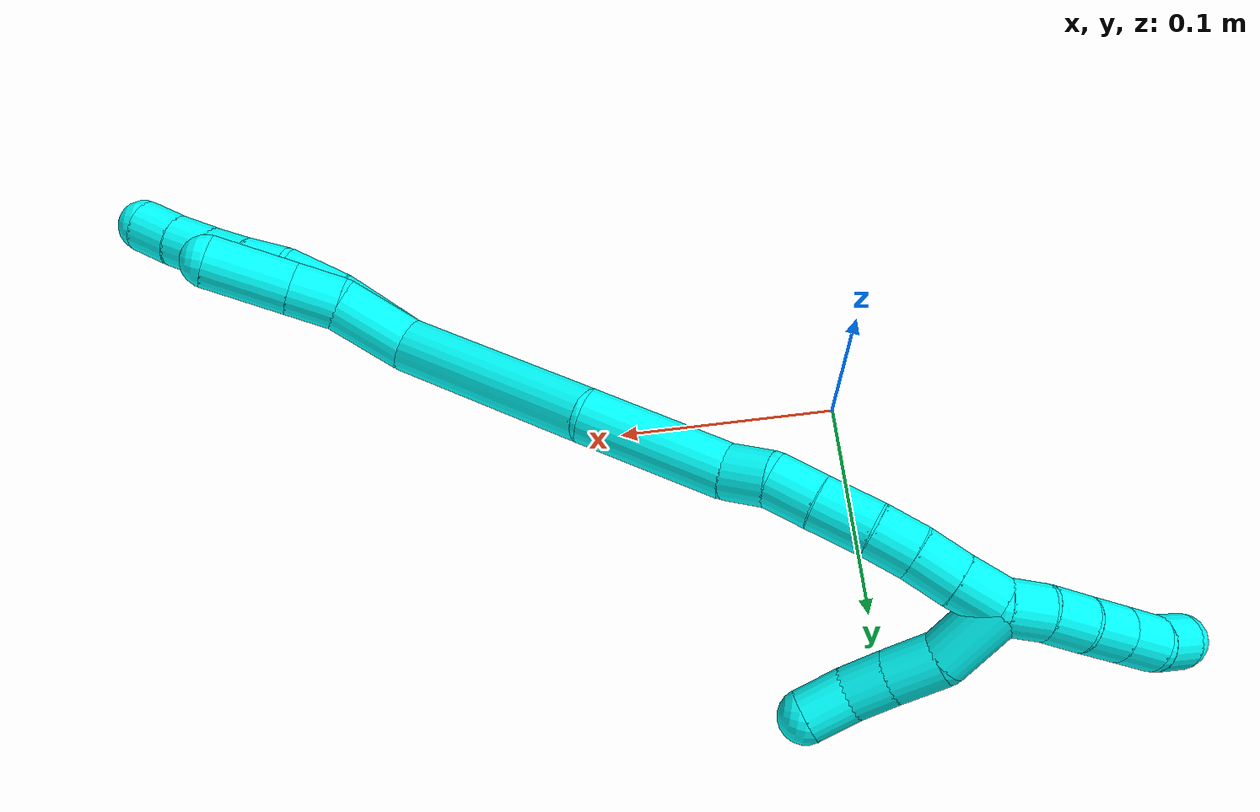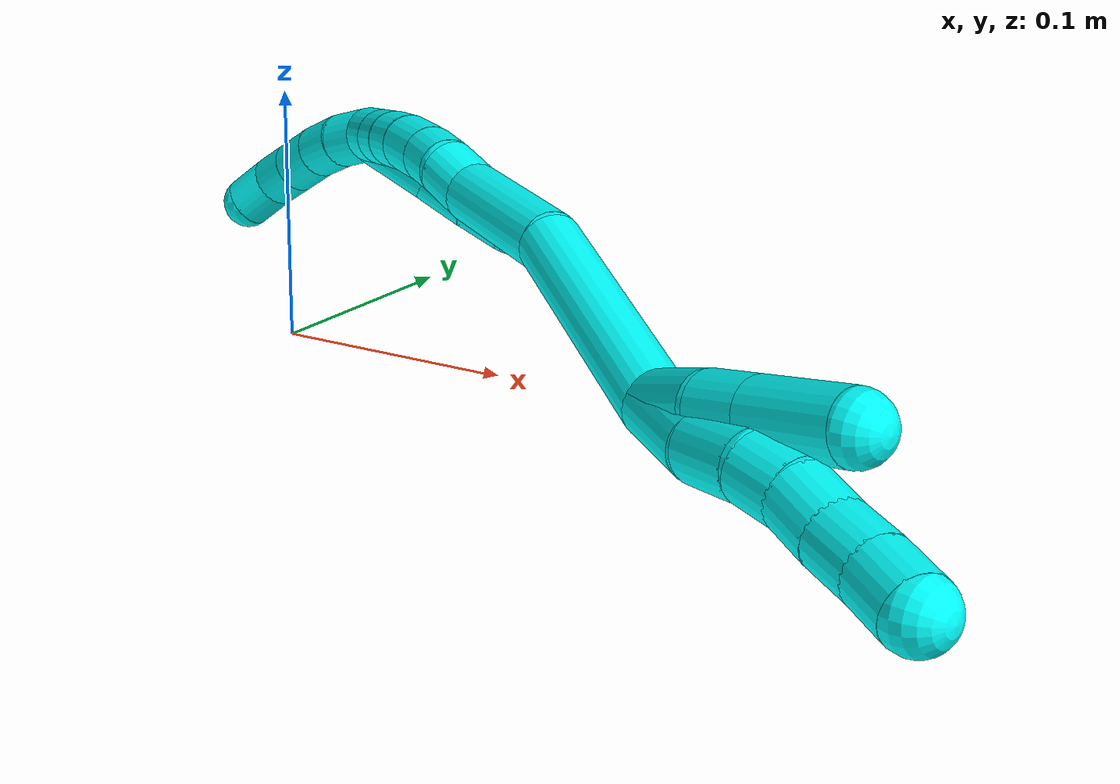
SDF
<sdf version="1.7">
 <world name="default">
  <model name="3">
   <static>0</static>
   <link name="3">
    <collision name="collision-cylinder-e_1_2_8">
     <pose>0.008987 0.000628 -0.01861 -3.10787 0.449661 -2.99438</pose>
     <geometry><cylinder><radius>0.0125</radius><length>0.041352</length></cylinder></geometry>
     <surface>
      <friction><ode><mu>1.16</mu><mu2>1.16</mu2><slip1>0</slip1><slip2>0</slip2></ode></friction>
      <contact><ode><kp>1e+06</kp><kd>1</kd><max_vel>0</max_vel><min_depth>0.001</min_depth></ode></contact>
     </surface>
    </collision>
    <visual name="visual-cylinder-e_1_2_8">
     <pose>0.008987 0.000628 -0.01861 -3.10787 0.449661 -2.99438</pose>
     <geometry><cylinder><radius>0.0125</radius><length>0.041352</length></cylinder></geometry>
     <material><ambient>0.003922 1 0.996078 1</ambient></material>
    </visual>
    <collision name="collision-cylinder-e_2_8_9">
     <pose>0.021433 0.002851 -0.050933 -3.02581 0.245511 -2.26327</pose>
     <geometry><cylinder><radius>0.0125</radius><length>0.028464</length></cylinder></geometry>
     <surface>
      <friction><ode><mu>1.16</mu><mu2>1.16</mu2><slip1>0</slip1><slip2>0</slip2></ode></friction>
      <contact><ode><kp>1e+06</kp><kd>1</kd><max_vel>0</max_vel><min_depth>0.001</min_depth></ode></contact>
     </surface>
    </collision>
    <visual name="visual-cylinder-e_2_8_9">
     <pose>0.021433 0.002851 -0.050933 -3.02581 0.245511 -2.26327</pose>
     <geometry><cylinder><radius>0.0125</radius><length>0.028464</length></cylinder></geometry>
     <material><ambient>0.003922 1 0.996078 1</ambient></material>
    </visual>
    <collision name="collision-cylinder-e_3_9_10">
     <pose>0.026646 0.003159 -0.074423 3.01077 0.176004 1.86428</pose>
     <geometry><cylinder><radius>0.0125</radius><length>0.020034</length></cylinder></geometry>
     <surface>
      <friction><ode><mu>1.16</mu><mu2>1.16</mu2><slip1>0</slip1><slip2>0</slip2></ode></friction>
      <contact><ode><kp>1e+06</kp><kd>1</kd><max_vel>0</max_vel><min_depth>0.001</min_depth></ode></contact>
     </surface>
    </collision>
    <visual name="visual-cylinder-e_3_9_10">
     <pose>0.026646 0.003159 -0.074423 3.01077 0.176004 1.86428</pose>
     <geometry><cylinder><radius>0.0125</radius><length>0.020034</length></cylinder></geometry>
     <material><ambient>0.003922 1 0.996078 1</ambient></material>
    </visual>
    <collision name="collision-cylinder-e_4_10_11">
     <pose>0.031501 -0.000673 -0.093428 2.87242 0.313339 1.72427</pose>
     <geometry><cylinder><radius>0.0125</radius><length>0.020123</length></cylinder></geometry>
     <surface>
      <friction><ode><mu>1.16</mu><mu2>1.16</mu2><slip1>0</slip1><slip2>0</slip2></ode></friction>
      <contact><ode><kp>1e+06</kp><kd>1</kd><max_vel>0</max_vel><min_depth>0.001</min_depth></ode></contact>
     </surface>
    </collision>
    <visual name="visual-cylinder-e_4_10_11">
     <pose>0.031501 -0.000673 -0.093428 2.87242 0.313339 1.72427</pose>
     <geometry><cylinder><radius>0.0125</radius><length>0.020123</length></cylinder></geometry>
     <material><ambient>0.003922 1 0.996078 1</ambient></material>
    </visual>
    <collision name="collision-cylinder-e_5_11_12">
     <pose>0.037566 -0.004808 -0.112075 2.97445 0.300755 2.13156</pose>
     <geometry><cylinder><radius>0.0125</radius><length>0.020004</length></cylinder></geometry>
     <surface>
      <friction><ode><mu>1.16</mu><mu2>1.16</mu2><slip1>0</slip1><slip2>0</slip2></ode></friction>
      <contact><ode><kp>1e+06</kp><kd>1</kd><max_vel>0</max_vel><min_depth>0.001</min_depth></ode></contact>
     </surface>
    </collision>
    <visual name="visual-cylinder-e_5_11_12">
     <pose>0.037566 -0.004808 -0.112075 2.97445 0.300755 2.13156</pose>
     <geometry><cylinder><radius>0.0125</radius><length>0.020004</length></cylinder></geometry>
     <material><ambient>0.003922 1 0.996078 1</ambient></material>
    </visual>
    <collision name="collision-cylinder-e_6_12_6">
     <pose>0.044262 -0.007889 -0.130664 2.98026 0.382079 2.34974</pose>
     <geometry><cylinder><radius>0.0125</radius><length>0.020024</length></cylinder></geometry>
     <surface>
      <friction><ode><mu>1.16</mu><mu2>1.16</mu2><slip1>0</slip1><slip2>0</slip2></ode></friction>
      <contact><ode><kp>1e+06</kp><kd>1</kd><max_vel>0</max_vel><min_depth>0.001</min_depth></ode></contact>
     </surface>
    </collision>
    <visual name="visual-cylinder-e_6_12_6">
     <pose>0.044262 -0.007889 -0.130664 2.98026 0.382079 2.34974</pose>
     <geometry><cylinder><radius>0.0125</radius><length>0.020024</length></cylinder></geometry>
     <material><ambient>0.003922 1 0.996078 1</ambient></material>
    </visual>
    <collision name="collision-cylinder-e_1_2_13">
     <pose>0.004449 0.005352 -0.016912 -2.83513 0.245722 -1.34891</pose>
     <geometry><cylinder><radius>0.0125</radius><length>0.036576</length></cylinder></geometry>
     <surface>
      <friction><ode><mu>1.16</mu><mu2>1.16</mu2><slip1>0</slip1><slip2>0</slip2></ode></friction>
      <contact><ode><kp>1e+06</kp><kd>1</kd><max_vel>0</max_vel><min_depth>0.001</min_depth></ode></contact>
     </surface>
    </collision>
    <visual name="visual-cylinder-e_1_2_13">
     <pose>0.004449 0.005352 -0.016912 -2.83513 0.245722 -1.34891</pose>
     <geometry><cylinder><radius>0.0125</radius><length>0.036576</length></cylinder></geometry>
     <material><ambient>0.003922 1 0.996078 1</ambient></material>
    </visual>
    <collision name="collision-cylinder-e_2_13_14">
     <pose>0.009724 0.012372 -0.04514 -2.99513 0.072169 -0.914607</pose>
     <geometry><cylinder><radius>0.0125</radius><length>0.022935</length></cylinder></geometry>
     <surface>
      <friction><ode><mu>1.16</mu><mu2>1.16</mu2><slip1>0</slip1><slip2>0</slip2></ode></friction>
      <contact><ode><kp>1e+06</kp><kd>1</kd><max_vel>0</max_vel><min_depth>0.001</min_depth></ode></contact>
     </surface>
    </collision>
    <visual name="visual-cylinder-e_2_13_14">
     <pose>0.009724 0.012372 -0.04514 -2.99513 0.072169 -0.914607</pose>
     <geometry><cylinder><radius>0.0125</radius><length>0.022935</length></cylinder></geometry>
     <material><ambient>0.003922 1 0.996078 1</ambient></material>
    </visual>
    <collision name="collision-cylinder-e_3_14_5">
     <pose>0.012024 0.017005 -0.076427 -2.9943 0.072816 -0.917191</pose>
     <geometry><cylinder><radius>0.0125</radius><length>0.040489</length></cylinder></geometry>
     <surface>
      <friction><ode><mu>1.16</mu><mu2>1.16</mu2><slip1>0</slip1><slip2>0</slip2></ode></friction>
      <contact><ode><kp>1e+06</kp><kd>1</kd><max_vel>0</max_vel><min_depth>0.001</min_depth></ode></contact>
     </surface>
    </collision>
    <visual name="visual-cylinder-e_3_14_5">
     <pose>0.012024 0.017005 -0.076427 -2.9943 0.072816 -0.917191</pose>
     <geometry><cylinder><radius>0.0125</radius><length>0.040489</length></cylinder></geometry>
     <material><ambient>0.003922 1 0.996078 1</ambient></material>
    </visual>
    <collision name="collision-cylinder-e_1_2_15">
     <pose>-0.020252 0.015185 0.044216 -0.330798 -0.408794 0.069176</pose>
     <geometry><cylinder><radius>0.0125</radius><length>0.101898</length></cylinder></geometry>
     <surface>
      <friction><ode><mu>1.16</mu><mu2>1.16</mu2><slip1>0</slip1><slip2>0</slip2></ode></friction>
      <contact><ode><kp>1e+06</kp><kd>1</kd><max_vel>0</max_vel><min_depth>0.001</min_depth></ode></contact>
     </surface>
    </collision>
    <visual name="visual-cylinder-e_1_2_15">
     <pose>-0.020252 0.015185 0.044216 -0.330798 -0.408794 0.069176</pose>
     <geometry><cylinder><radius>0.0125</radius><length>0.101898</length></cylinder></geometry>
     <material><ambient>0.003922 1 0.996078 1</ambient></material>
    </visual>
    <collision name="collision-cylinder-e_2_15_16">
     <pose>-0.050095 0.033116 0.120607 -0.085152 -0.288684 0.012384</pose>
     <geometry><cylinder><radius>0.0125</radius><length>0.067371</length></cylinder></geometry>
     <surface>
      <friction><ode><mu>1.16</mu><mu2>1.16</mu2><slip1>0</slip1><slip2>0</slip2></ode></friction>
      <contact><ode><kp>1e+06</kp><kd>1</kd><max_vel>0</max_vel><min_depth>0.001</min_depth></ode></contact>
     </surface>
    </collision>
    <visual name="visual-cylinder-e_2_15_16">
     <pose>-0.050095 0.033116 0.120607 -0.085152 -0.288684 0.012384</pose>
     <geometry><cylinder><radius>0.0125</radius><length>0.067371</length></cylinder></geometry>
     <material><ambient>0.003922 1 0.996078 1</ambient></material>
    </visual>
    <collision name="collision-cylinder-e_3_16_17">
     <pose>-0.061729 0.039199 0.162386 -0.33437 -0.198416 0.033592</pose>
     <geometry><cylinder><radius>0.0125</radius><length>0.020741</length></cylinder></geometry>
     <surface>
      <friction><ode><mu>1.16</mu><mu2>1.16</mu2><slip1>0</slip1><slip2>0</slip2></ode></friction>
      <contact><ode><kp>1e+06</kp><kd>1</kd><max_vel>0</max_vel><min_depth>0.001</min_depth></ode></contact>
     </surface>
    </collision>
    <visual name="visual-cylinder-e_3_16_17">
     <pose>-0.061729 0.039199 0.162386 -0.33437 -0.198416 0.033592</pose>
     <geometry><cylinder><radius>0.0125</radius><length>0.020741</length></cylinder></geometry>
     <material><ambient>0.003922 1 0.996078 1</ambient></material>
    </visual>
    <collision name="collision-cylinder-e_4_17_18">
     <pose>-0.067722 0.043038 0.182025 -0.050032 -0.374403 0.009479</pose>
     <geometry><cylinder><radius>0.0125</radius><length>0.021592</length></cylinder></geometry>
     <surface>
      <friction><ode><mu>1.16</mu><mu2>1.16</mu2><slip1>0</slip1><slip2>0</slip2></ode></friction>
      <contact><ode><kp>1e+06</kp><kd>1</kd><max_vel>0</max_vel><min_depth>0.001</min_depth></ode></contact>
     </surface>
    </collision>
    <visual name="visual-cylinder-e_4_17_18">
     <pose>-0.067722 0.043038 0.182025 -0.050032 -0.374403 0.009479</pose>
     <geometry><cylinder><radius>0.0125</radius><length>0.021592</length></cylinder></geometry>
     <material><ambient>0.003922 1 0.996078 1</ambient></material>
    </visual>
    <collision name="collision-cylinder-e_5_18_19">
     <pose>-0.075954 0.043574 0.20449 -0.00274 -0.331915 0.000459</pose>
     <geometry><cylinder><radius>0.0125</radius><length>0.026293</length></cylinder></geometry>
     <surface>
      <friction><ode><mu>1.16</mu><mu2>1.16</mu2><slip1>0</slip1><slip2>0</slip2></ode></friction>
      <contact><ode><kp>1e+06</kp><kd>1</kd><max_vel>0</max_vel><min_depth>0.001</min_depth></ode></contact>
     </surface>
    </collision>
    <visual name="visual-cylinder-e_5_18_19">
     <pose>-0.075954 0.043574 0.20449 -0.00274 -0.331915 0.000459</pose>
     <geometry><cylinder><radius>0.0125</radius><length>0.026293</length></cylinder></geometry>
     <material><ambient>0.003922 1 0.996078 1</ambient></material>
    </visual>
    <collision name="collision-cylinder-e_6_19_20">
     <pose>-0.083488 0.042625 0.226363 0.10371 -0.329807 -0.017274</pose>
     <geometry><cylinder><radius>0.0125</radius><length>0.020072</length></cylinder></geometry>
     <surface>
      <friction><ode><mu>1.16</mu><mu2>1.16</mu2><slip1>0</slip1><slip2>0</slip2></ode></friction>
      <contact><ode><kp>1e+06</kp><kd>1</kd><max_vel>0</max_vel><min_depth>0.001</min_depth></ode></contact>
     </surface>
    </collision>
    <visual name="visual-cylinder-e_6_19_20">
     <pose>-0.083488 0.042625 0.226363 0.10371 -0.329807 -0.017274</pose>
     <geometry><cylinder><radius>0.0125</radius><length>0.020072</length></cylinder></geometry>
     <material><ambient>0.003922 1 0.996078 1</ambient></material>
    </visual>
    <collision name="collision-cylinder-e_7_20_21">
     <pose>-0.090622 0.039971 0.245401 0.172506 -0.37949 -0.03321</pose>
     <geometry><cylinder><radius>0.0125</radius><length>0.020969</length></cylinder></geometry>
     <surface>
      <friction><ode><mu>1.16</mu><mu2>1.16</mu2><slip1>0</slip1><slip2>0</slip2></ode></friction>
      <contact><ode><kp>1e+06</kp><kd>1</kd><max_vel>0</max_vel><min_depth>0.001</min_depth></ode></contact>
     </surface>
    </collision>
    <visual name="visual-cylinder-e_7_20_21">
     <pose>-0.090622 0.039971 0.245401 0.172506 -0.37949 -0.03321</pose>
     <geometry><cylinder><radius>0.0125</radius><length>0.020969</length></cylinder></geometry>
     <material><ambient>0.003922 1 0.996078 1</ambient></material>
    </visual>
    <collision name="collision-cylinder-e_8_21_1">
     <pose>-0.097984 0.036813 0.264824 0.150039 -0.336564 -0.025537</pose>
     <geometry><cylinder><radius>0.0125</radius><length>0.021064</length></cylinder></geometry>
     <surface>
      <friction><ode><mu>1.16</mu><mu2>1.16</mu2><slip1>0</slip1><slip2>0</slip2></ode></friction>
      <contact><ode><kp>1e+06</kp><kd>1</kd><max_vel>0</max_vel><min_depth>0.001</min_depth></ode></contact>
     </surface>
    </collision>
    <visual name="visual-cylinder-e_8_21_1">
     <pose>-0.097984 0.036813 0.264824 0.150039 -0.336564 -0.025537</pose>
     <geometry><cylinder><radius>0.0125</radius><length>0.021064</length></cylinder></geometry>
     <material><ambient>0.003922 1 0.996078 1</ambient></material>
    </visual>
    <collision name="collision-cylinder-e_1_1_22">
     <pose>-0.10021 0.033268 0.284359 0.20906 0.125492 0.013183</pose>
     <geometry><cylinder><radius>0.0125</radius><length>0.02</length></cylinder></geometry>
     <surface>
      <friction><ode><mu>1.16</mu><mu2>1.16</mu2><slip1>0</slip1><slip2>0</slip2></ode></friction>
      <contact><ode><kp>1e+06</kp><kd>1</kd><max_vel>0</max_vel><min_depth>0.001</min_depth></ode></contact>
     </surface>
    </collision>
    <visual name="visual-cylinder-e_1_1_22">
     <pose>-0.10021 0.033268 0.284359 0.20906 0.125492 0.013183</pose>
     <geometry><cylinder><radius>0.0125</radius><length>0.02</length></cylinder></geometry>
     <material><ambient>0.003922 1 0.996078 1</ambient></material>
    </visual>
    <collision name="collision-cylinder-e_2_22_23">
     <pose>-0.098256 0.027819 0.303446 0.346695 0.070313 0.012317</pose>
     <geometry><cylinder><radius>0.0125</radius><length>0.02</length></cylinder></geometry>
     <surface>
      <friction><ode><mu>1.16</mu><mu2>1.16</mu2><slip1>0</slip1><slip2>0</slip2></ode></friction>
      <contact><ode><kp>1e+06</kp><kd>1</kd><max_vel>0</max_vel><min_depth>0.001</min_depth></ode></contact>
     </surface>
    </collision>
    <visual name="visual-cylinder-e_2_22_23">
     <pose>-0.098256 0.027819 0.303446 0.346695 0.070313 0.012317</pose>
     <geometry><cylinder><radius>0.0125</radius><length>0.02</length></cylinder></geometry>
     <material><ambient>0.003922 1 0.996078 1</ambient></material>
    </visual>
    <collision name="collision-cylinder-e_3_23_24">
     <pose>-0.09607 0.02004 0.321689 0.45991 0.148906 0.034919</pose>
     <geometry><cylinder><radius>0.0125</radius><length>0.02</length></cylinder></geometry>
     <surface>
      <friction><ode><mu>1.16</mu><mu2>1.16</mu2><slip1>0</slip1><slip2>0</slip2></ode></friction>
      <contact><ode><kp>1e+06</kp><kd>1</kd><max_vel>0</max_vel><min_depth>0.001</min_depth></ode></contact>
     </surface>
    </collision>
    <visual name="visual-cylinder-e_3_23_24">
     <pose>-0.09607 0.02004 0.321689 0.45991 0.148906 0.034919</pose>
     <geometry><cylinder><radius>0.0125</radius><length>0.02</length></cylinder></geometry>
     <material><ambient>0.003922 1 0.996078 1</ambient></material>
    </visual>
    <collision name="collision-cylinder-e_4_24_25">
     <pose>-0.093196 0.011296 0.339445 0.455373 0.139465 0.032364</pose>
     <geometry><cylinder><radius>0.0125</radius><length>0.02</length></cylinder></geometry>
     <surface>
      <friction><ode><mu>1.16</mu><mu2>1.16</mu2><slip1>0</slip1><slip2>0</slip2></ode></friction>
      <contact><ode><kp>1e+06</kp><kd>1</kd><max_vel>0</max_vel><min_depth>0.001</min_depth></ode></contact>
     </surface>
    </collision>
    <visual name="visual-cylinder-e_4_24_25">
     <pose>-0.093196 0.011296 0.339445 0.455373 0.139465 0.032364</pose>
     <geometry><cylinder><radius>0.0125</radius><length>0.02</length></cylinder></geometry>
     <material><ambient>0.003922 1 0.996078 1</ambient></material>
    </visual>
    <collision name="collision-cylinder-e_5_25_4">
     <pose>-0.087477 0.001884 0.355802 0.595443 0.447722 0.139495</pose>
     <geometry><cylinder><radius>0.0125</radius><length>0.02</length></cylinder></geometry>
     <surface>
      <friction><ode><mu>1.16</mu><mu2>1.16</mu2><slip1>0</slip1><slip2>0</slip2></ode></friction>
      <contact><ode><kp>1e+06</kp><kd>1</kd><max_vel>0</max_vel><min_depth>0.001</min_depth></ode></contact>
     </surface>
    </collision>
    <visual name="visual-cylinder-e_5_25_4">
     <pose>-0.087477 0.001884 0.355802 0.595443 0.447722 0.139495</pose>
     <geometry><cylinder><radius>0.0125</radius><length>0.02</length></cylinder></geometry>
     <material><ambient>0.003922 1 0.996078 1</ambient></material>
    </visual>
    <collision name="collision-cylinder-e_1_1_26">
     <pose>-0.109858 0.023653 0.265432 2.23936 -0.513802 -0.993815</pose>
     <geometry><cylinder><radius>0.0125</radius><length>0.034164</length></cylinder></geometry>
     <surface>
      <friction><ode><mu>1.16</mu><mu2>1.16</mu2><slip1>0</slip1><slip2>0</slip2></ode></friction>
      <contact><ode><kp>1e+06</kp><kd>1</kd><max_vel>0</max_vel><min_depth>0.001</min_depth></ode></contact>
     </surface>
    </collision>
    <visual name="visual-cylinder-e_1_1_26">
     <pose>-0.109858 0.023653 0.265432 2.23936 -0.513802 -0.993815</pose>
     <geometry><cylinder><radius>0.0125</radius><length>0.034164</length></cylinder></geometry>
     <material><ambient>0.003922 1 0.996078 1</ambient></material>
    </visual>
    <collision name="collision-cylinder-e_2_26_27">
     <pose>-0.121434 0.00515 0.246915 2.50791 -0.26905 -0.782938</pose>
     <geometry><cylinder><radius>0.0125</radius><length>0.023932</length></cylinder></geometry>
     <surface>
      <friction><ode><mu>1.16</mu><mu2>1.16</mu2><slip1>0</slip1><slip2>0</slip2></ode></friction>
      <contact><ode><kp>1e+06</kp><kd>1</kd><max_vel>0</max_vel><min_depth>0.001</min_depth></ode></contact>
     </surface>
    </collision>
    <visual name="visual-cylinder-e_2_26_27">
     <pose>-0.121434 0.00515 0.246915 2.50791 -0.26905 -0.782938</pose>
     <geometry><cylinder><radius>0.0125</radius><length>0.023932</length></cylinder></geometry>
     <material><ambient>0.003922 1 0.996078 1</ambient></material>
    </visual>
    <collision name="collision-cylinder-e_3_27_28">
     <pose>-0.127698 -0.007309 0.229719 2.52261 -0.307776 -0.903289</pose>
     <geometry><cylinder><radius>0.0125</radius><length>0.020357</length></cylinder></geometry>
     <surface>
      <friction><ode><mu>1.16</mu><mu2>1.16</mu2><slip1>0</slip1><slip2>0</slip2></ode></friction>
      <contact><ode><kp>1e+06</kp><kd>1</kd><max_vel>0</max_vel><min_depth>0.001</min_depth></ode></contact>
     </surface>
    </collision>
    <visual name="visual-cylinder-e_3_27_28">
     <pose>-0.127698 -0.007309 0.229719 2.52261 -0.307776 -0.903289</pose>
     <geometry><cylinder><radius>0.0125</radius><length>0.020357</length></cylinder></geometry>
     <material><ambient>0.003922 1 0.996078 1</ambient></material>
    </visual>
    <collision name="collision-cylinder-e_4_28_3">
     <pose>-0.135883 -0.017133 0.213307 2.68359 -0.493228 -1.64769</pose>
     <geometry><cylinder><radius>0.0125</radius><length>0.021548</length></cylinder></geometry>
     <surface>
      <friction><ode><mu>1.16</mu><mu2>1.16</mu2><slip1>0</slip1><slip2>0</slip2></ode></friction>
      <contact><ode><kp>1e+06</kp><kd>1</kd><max_vel>0</max_vel><min_depth>0.001</min_depth></ode></contact>
     </surface>
    </collision>
    <visual name="visual-cylinder-e_4_28_3">
     <pose>-0.135883 -0.017133 0.213307 2.68359 -0.493228 -1.64769</pose>
     <geometry><cylinder><radius>0.0125</radius><length>0.021548</length></cylinder></geometry>
     <material><ambient>0.003922 1 0.996078 1</ambient></material>
    </visual>
    <collision name="collision-sphere-3">
     <pose>-0.140984 -0.021329 0.204795 0 -0 0</pose>
     <geometry><sphere><radius>0.0125</radius></sphere></geometry>
     <surface>
      <friction><ode><mu>1.16</mu><mu2>1.16</mu2><slip1>0</slip1><slip2>0</slip2></ode></friction>
      <contact><ode><kp>1e+06</kp><kd>1</kd><max_vel>0</max_vel><min_depth>0.001</min_depth></ode></contact>
     </surface>
    </collision>
    <visual name="visual-sphere-3">
     <pose>-0.140984 -0.021329 0.204795 0 -0 0</pose>
     <geometry><sphere><radius>0.0125</radius></sphere></geometry>
     <material><ambient>0.003922 1 0.996078 1</ambient></material>
    </visual>
    <collision name="collision-sphere-28">
     <pose>-0.130782 -0.012937 0.221818 0 -0 0</pose>
     <geometry><sphere><radius>0.0125</radius></sphere></geometry>
     <surface>
      <friction><ode><mu>1.16</mu><mu2>1.16</mu2><slip1>0</slip1><slip2>0</slip2></ode></friction>
      <contact><ode><kp>1e+06</kp><kd>1</kd><max_vel>0</max_vel><min_depth>0.001</min_depth></ode></contact>
     </surface>
    </collision>
    <visual name="visual-sphere-28">
     <pose>-0.130782 -0.012937 0.221818 0 -0 0</pose>
     <geometry><sphere><radius>0.0125</radius></sphere></geometry>
     <material><ambient>0.003922 1 0.996078 1</ambient></material>
    </visual>
    <collision name="collision-sphere-27">
     <pose>-0.124615 -0.001681 0.237619 0 -0 0</pose>
     <geometry><sphere><radius>0.0125</radius></sphere></geometry>
     <surface>
      <friction><ode><mu>1.16</mu><mu2>1.16</mu2><slip1>0</slip1><slip2>0</slip2></ode></friction>
      <contact><ode><kp>1e+06</kp><kd>1</kd><max_vel>0</max_vel><min_depth>0.001</min_depth></ode></contact>
     </surface>
    </collision>
    <visual name="visual-sphere-27">
     <pose>-0.124615 -0.001681 0.237619 0 -0 0</pose>
     <geometry><sphere><radius>0.0125</radius></sphere></geometry>
     <material><ambient>0.003922 1 0.996078 1</ambient></material>
    </visual>
    <collision name="collision-sphere-26">
     <pose>-0.118253 0.01198 0.256211 0 -0 0</pose>
     <geometry><sphere><radius>0.0125</radius></sphere></geometry>
     <surface>
      <friction><ode><mu>1.16</mu><mu2>1.16</mu2><slip1>0</slip1><slip2>0</slip2></ode></friction>
      <contact><ode><kp>1e+06</kp><kd>1</kd><max_vel>0</max_vel><min_depth>0.001</min_depth></ode></contact>
     </surface>
    </collision>
    <visual name="visual-sphere-26">
     <pose>-0.118253 0.01198 0.256211 0 -0 0</pose>
     <geometry><sphere><radius>0.0125</radius></sphere></geometry>
     <material><ambient>0.003922 1 0.996078 1</ambient></material>
    </visual>
    <collision name="collision-sphere-4">
     <pose>-0.083148 -0.003172 0.363265 0 -0 0</pose>
     <geometry><sphere><radius>0.0125</radius></sphere></geometry>
     <surface>
      <friction><ode><mu>1.16</mu><mu2>1.16</mu2><slip1>0</slip1><slip2>0</slip2></ode></friction>
      <contact><ode><kp>1e+06</kp><kd>1</kd><max_vel>0</max_vel><min_depth>0.001</min_depth></ode></contact>
     </surface>
    </collision>
    <visual name="visual-sphere-4">
     <pose>-0.083148 -0.003172 0.363265 0 -0 0</pose>
     <geometry><sphere><radius>0.0125</radius></sphere></geometry>
     <material><ambient>0.003922 1 0.996078 1</ambient></material>
    </visual>
    <collision name="collision-sphere-25">
     <pose>-0.091806 0.00694 0.348339 0 -0 0</pose>
     <geometry><sphere><radius>0.0125</radius></sphere></geometry>
     <surface>
      <friction><ode><mu>1.16</mu><mu2>1.16</mu2><slip1>0</slip1><slip2>0</slip2></ode></friction>
      <contact><ode><kp>1e+06</kp><kd>1</kd><max_vel>0</max_vel><min_depth>0.001</min_depth></ode></contact>
     </surface>
    </collision>
    <visual name="visual-sphere-25">
     <pose>-0.091806 0.00694 0.348339 0 -0 0</pose>
     <geometry><sphere><radius>0.0125</radius></sphere></geometry>
     <material><ambient>0.003922 1 0.996078 1</ambient></material>
    </visual>
    <collision name="collision-sphere-24">
     <pose>-0.094587 0.015651 0.330551 0 -0 0</pose>
     <geometry><sphere><radius>0.0125</radius></sphere></geometry>
     <surface>
      <friction><ode><mu>1.16</mu><mu2>1.16</mu2><slip1>0</slip1><slip2>0</slip2></ode></friction>
      <contact><ode><kp>1e+06</kp><kd>1</kd><max_vel>0</max_vel><min_depth>0.001</min_depth></ode></contact>
     </surface>
    </collision>
    <visual name="visual-sphere-24">
     <pose>-0.094587 0.015651 0.330551 0 -0 0</pose>
     <geometry><sphere><radius>0.0125</radius></sphere></geometry>
     <material><ambient>0.003922 1 0.996078 1</ambient></material>
    </visual>
    <collision name="collision-sphere-23">
     <pose>-0.097554 0.02443 0.312828 0 -0 0</pose>
     <geometry><sphere><radius>0.0125</radius></sphere></geometry>
     <surface>
      <friction><ode><mu>1.16</mu><mu2>1.16</mu2><slip1>0</slip1><slip2>0</slip2></ode></friction>
      <contact><ode><kp>1e+06</kp><kd>1</kd><max_vel>0</max_vel><min_depth>0.001</min_depth></ode></contact>
     </surface>
    </collision>
    <visual name="visual-sphere-23">
     <pose>-0.097554 0.02443 0.312828 0 -0 0</pose>
     <geometry><sphere><radius>0.0125</radius></sphere></geometry>
     <material><ambient>0.003922 1 0.996078 1</ambient></material>
    </visual>
    <collision name="collision-sphere-22">
     <pose>-0.098959 0.031209 0.294064 0 -0 0</pose>
     <geometry><sphere><radius>0.0125</radius></sphere></geometry>
     <surface>
      <friction><ode><mu>1.16</mu><mu2>1.16</mu2><slip1>0</slip1><slip2>0</slip2></ode></friction>
      <contact><ode><kp>1e+06</kp><kd>1</kd><max_vel>0</max_vel><min_depth>0.001</min_depth></ode></contact>
     </surface>
    </collision>
    <visual name="visual-sphere-22">
     <pose>-0.098959 0.031209 0.294064 0 -0 0</pose>
     <geometry><sphere><radius>0.0125</radius></sphere></geometry>
     <material><ambient>0.003922 1 0.996078 1</ambient></material>
    </visual>
    <collision name="collision-sphere-1">
     <pose>-0.101462 0.035327 0.274653 0 -0 0</pose>
     <geometry><sphere><radius>0.0125</radius></sphere></geometry>
     <surface>
      <friction><ode><mu>1.16</mu><mu2>1.16</mu2><slip1>0</slip1><slip2>0</slip2></ode></friction>
      <contact><ode><kp>1e+06</kp><kd>1</kd><max_vel>0</max_vel><min_depth>0.001</min_depth></ode></contact>
     </surface>
    </collision>
    <visual name="visual-sphere-1">
     <pose>-0.101462 0.035327 0.274653 0 -0 0</pose>
     <geometry><sphere><radius>0.0125</radius></sphere></geometry>
     <material><ambient>0.003922 1 0.996078 1</ambient></material>
    </visual>
    <collision name="collision-sphere-21">
     <pose>-0.094506 0.038299 0.254995 0 -0 0</pose>
     <geometry><sphere><radius>0.0125</radius></sphere></geometry>
     <surface>
      <friction><ode><mu>1.16</mu><mu2>1.16</mu2><slip1>0</slip1><slip2>0</slip2></ode></friction>
      <contact><ode><kp>1e+06</kp><kd>1</kd><max_vel>0</max_vel><min_depth>0.001</min_depth></ode></contact>
     </surface>
    </collision>
    <visual name="visual-sphere-21">
     <pose>-0.094506 0.038299 0.254995 0 -0 0</pose>
     <geometry><sphere><radius>0.0125</radius></sphere></geometry>
     <material><ambient>0.003922 1 0.996078 1</ambient></material>
    </visual>
    <collision name="collision-sphere-12">
     <pose>0.040529 -0.006397 -0.121495 0 -0 0</pose>
     <geometry><sphere><radius>0.0125</radius></sphere></geometry>
     <surface>
      <friction><ode><mu>1.16</mu><mu2>1.16</mu2><slip1>0</slip1><slip2>0</slip2></ode></friction>
      <contact><ode><kp>1e+06</kp><kd>1</kd><max_vel>0</max_vel><min_depth>0.001</min_depth></ode></contact>
     </surface>
    </collision>
    <visual name="visual-sphere-12">
     <pose>0.040529 -0.006397 -0.121495 0 -0 0</pose>
     <geometry><sphere><radius>0.0125</radius></sphere></geometry>
     <material><ambient>0.003922 1 0.996078 1</ambient></material>
    </visual>
    <collision name="collision-sphere-11">
     <pose>0.034603 -0.003219 -0.102655 0 -0 0</pose>
     <geometry><sphere><radius>0.0125</radius></sphere></geometry>
     <surface>
      <friction><ode><mu>1.16</mu><mu2>1.16</mu2><slip1>0</slip1><slip2>0</slip2></ode></friction>
      <contact><ode><kp>1e+06</kp><kd>1</kd><max_vel>0</max_vel><min_depth>0.001</min_depth></ode></contact>
     </surface>
    </collision>
    <visual name="visual-sphere-11">
     <pose>0.034603 -0.003219 -0.102655 0 -0 0</pose>
     <geometry><sphere><radius>0.0125</radius></sphere></geometry>
     <material><ambient>0.003922 1 0.996078 1</ambient></material>
    </visual>
    <collision name="collision-sphere-10">
     <pose>0.0284 0.001872 -0.084201 0 -0 0</pose>
     <geometry><sphere><radius>0.0125</radius></sphere></geometry>
     <surface>
      <friction><ode><mu>1.16</mu><mu2>1.16</mu2><slip1>0</slip1><slip2>0</slip2></ode></friction>
      <contact><ode><kp>1e+06</kp><kd>1</kd><max_vel>0</max_vel><min_depth>0.001</min_depth></ode></contact>
     </surface>
    </collision>
    <visual name="visual-sphere-10">
     <pose>0.0284 0.001872 -0.084201 0 -0 0</pose>
     <geometry><sphere><radius>0.0125</radius></sphere></geometry>
     <material><ambient>0.003922 1 0.996078 1</ambient></material>
    </visual>
    <collision name="collision-sphere-9">
     <pose>0.024892 0.004445 -0.064646 0 -0 0</pose>
     <geometry><sphere><radius>0.0125</radius></sphere></geometry>
     <surface>
      <friction><ode><mu>1.16</mu><mu2>1.16</mu2><slip1>0</slip1><slip2>0</slip2></ode></friction>
      <contact><ode><kp>1e+06</kp><kd>1</kd><max_vel>0</max_vel><min_depth>0.001</min_depth></ode></contact>
     </surface>
    </collision>
    <visual name="visual-sphere-9">
     <pose>0.024892 0.004445 -0.064646 0 -0 0</pose>
     <geometry><sphere><radius>0.0125</radius></sphere></geometry>
     <material><ambient>0.003922 1 0.996078 1</ambient></material>
    </visual>
    <collision name="collision-sphere-2">
     <geometry><sphere><radius>0.0125</radius></sphere></geometry>
     <surface>
      <friction><ode><mu>1.16</mu><mu2>1.16</mu2><slip1>0</slip1><slip2>0</slip2></ode></friction>
      <contact><ode><kp>1e+06</kp><kd>1</kd><max_vel>0</max_vel><min_depth>0.001</min_depth></ode></contact>
     </surface>
    </collision>
    <visual name="visual-sphere-2">
     <geometry><sphere><radius>0.0125</radius></sphere></geometry>
     <material><ambient>0.003922 1 0.996078 1</ambient></material>
    </visual>
    <collision name="collision-sphere-19">
     <pose>-0.080237 0.043608 0.216919 0 -0 0</pose>
     <geometry><sphere><radius>0.0125</radius></sphere></geometry>
     <surface>
      <friction><ode><mu>1.16</mu><mu2>1.16</mu2><slip1>0</slip1><slip2>0</slip2></ode></friction>
      <contact><ode><kp>1e+06</kp><kd>1</kd><max_vel>0</max_vel><min_depth>0.001</min_depth></ode></contact>
     </surface>
    </collision>
    <visual name="visual-sphere-19">
     <pose>-0.080237 0.043608 0.216919 0 -0 0</pose>
     <geometry><sphere><radius>0.0125</radius></sphere></geometry>
     <material><ambient>0.003922 1 0.996078 1</ambient></material>
    </visual>
    <collision name="collision-sphere-8">
     <pose>0.017974 0.001256 -0.03722 0 -0 0</pose>
     <geometry><sphere><radius>0.0125</radius></sphere></geometry>
     <surface>
      <friction><ode><mu>1.16</mu><mu2>1.16</mu2><slip1>0</slip1><slip2>0</slip2></ode></friction>
      <contact><ode><kp>1e+06</kp><kd>1</kd><max_vel>0</max_vel><min_depth>0.001</min_depth></ode></contact>
     </surface>
    </collision>
    <visual name="visual-sphere-8">
     <pose>0.017974 0.001256 -0.03722 0 -0 0</pose>
     <geometry><sphere><radius>0.0125</radius></sphere></geometry>
     <material><ambient>0.003922 1 0.996078 1</ambient></material>
    </visual>
    <collision name="collision-sphere-6">
     <pose>0.047995 -0.009382 -0.139833 0 -0 0</pose>
     <geometry><sphere><radius>0.0125</radius></sphere></geometry>
     <surface>
      <friction><ode><mu>1.16</mu><mu2>1.16</mu2><slip1>0</slip1><slip2>0</slip2></ode></friction>
      <contact><ode><kp>1e+06</kp><kd>1</kd><max_vel>0</max_vel><min_depth>0.001</min_depth></ode></contact>
     </surface>
    </collision>
    <visual name="visual-sphere-6">
     <pose>0.047995 -0.009382 -0.139833 0 -0 0</pose>
     <geometry><sphere><radius>0.0125</radius></sphere></geometry>
     <material><ambient>0.003922 1 0.996078 1</ambient></material>
    </visual>
    <collision name="collision-sphere-13">
     <pose>0.008897 0.010703 -0.033824 0 -0 0</pose>
     <geometry><sphere><radius>0.0125</radius></sphere></geometry>
     <surface>
      <friction><ode><mu>1.16</mu><mu2>1.16</mu2><slip1>0</slip1><slip2>0</slip2></ode></friction>
      <contact><ode><kp>1e+06</kp><kd>1</kd><max_vel>0</max_vel><min_depth>0.001</min_depth></ode></contact>
     </surface>
    </collision>
    <visual name="visual-sphere-13">
     <pose>0.008897 0.010703 -0.033824 0 -0 0</pose>
     <geometry><sphere><radius>0.0125</radius></sphere></geometry>
     <material><ambient>0.003922 1 0.996078 1</ambient></material>
    </visual>
    <collision name="collision-sphere-14">
     <pose>0.010551 0.014042 -0.056455 0 -0 0</pose>
     <geometry><sphere><radius>0.0125</radius></sphere></geometry>
     <surface>
      <friction><ode><mu>1.16</mu><mu2>1.16</mu2><slip1>0</slip1><slip2>0</slip2></ode></friction>
      <contact><ode><kp>1e+06</kp><kd>1</kd><max_vel>0</max_vel><min_depth>0.001</min_depth></ode></contact>
     </surface>
    </collision>
    <visual name="visual-sphere-14">
     <pose>0.010551 0.014042 -0.056455 0 -0 0</pose>
     <geometry><sphere><radius>0.0125</radius></sphere></geometry>
     <material><ambient>0.003922 1 0.996078 1</ambient></material>
    </visual>
    <collision name="collision-sphere-5">
     <pose>0.013497 0.019968 -0.096399 0 -0 0</pose>
     <geometry><sphere><radius>0.0125</radius></sphere></geometry>
     <surface>
      <friction><ode><mu>1.16</mu><mu2>1.16</mu2><slip1>0</slip1><slip2>0</slip2></ode></friction>
      <contact><ode><kp>1e+06</kp><kd>1</kd><max_vel>0</max_vel><min_depth>0.001</min_depth></ode></contact>
     </surface>
    </collision>
    <visual name="visual-sphere-5">
     <pose>0.013497 0.019968 -0.096399 0 -0 0</pose>
     <geometry><sphere><radius>0.0125</radius></sphere></geometry>
     <material><ambient>0.003922 1 0.996078 1</ambient></material>
    </visual>
    <collision name="collision-sphere-15">
     <pose>-0.040505 0.030369 0.088433 0 -0 0</pose>
     <geometry><sphere><radius>0.0125</radius></sphere></geometry>
     <surface>
      <friction><ode><mu>1.16</mu><mu2>1.16</mu2><slip1>0</slip1><slip2>0</slip2></ode></friction>
      <contact><ode><kp>1e+06</kp><kd>1</kd><max_vel>0</max_vel><min_depth>0.001</min_depth></ode></contact>
     </surface>
    </collision>
    <visual name="visual-sphere-15">
     <pose>-0.040505 0.030369 0.088433 0 -0 0</pose>
     <geometry><sphere><radius>0.0125</radius></sphere></geometry>
     <material><ambient>0.003922 1 0.996078 1</ambient></material>
    </visual>
    <collision name="collision-sphere-16">
     <pose>-0.059685 0.035862 0.152782 0 -0 0</pose>
     <geometry><sphere><radius>0.0125</radius></sphere></geometry>
     <surface>
      <friction><ode><mu>1.16</mu><mu2>1.16</mu2><slip1>0</slip1><slip2>0</slip2></ode></friction>
      <contact><ode><kp>1e+06</kp><kd>1</kd><max_vel>0</max_vel><min_depth>0.001</min_depth></ode></contact>
     </surface>
    </collision>
    <visual name="visual-sphere-16">
     <pose>-0.059685 0.035862 0.152782 0 -0 0</pose>
     <geometry><sphere><radius>0.0125</radius></sphere></geometry>
     <material><ambient>0.003922 1 0.996078 1</ambient></material>
    </visual>
    <collision name="collision-sphere-17">
     <pose>-0.063773 0.042535 0.17199 0 -0 0</pose>
     <geometry><sphere><radius>0.0125</radius></sphere></geometry>
     <surface>
      <friction><ode><mu>1.16</mu><mu2>1.16</mu2><slip1>0</slip1><slip2>0</slip2></ode></friction>
      <contact><ode><kp>1e+06</kp><kd>1</kd><max_vel>0</max_vel><min_depth>0.001</min_depth></ode></contact>
     </surface>
    </collision>
    <visual name="visual-sphere-17">
     <pose>-0.063773 0.042535 0.17199 0 -0 0</pose>
     <geometry><sphere><radius>0.0125</radius></sphere></geometry>
     <material><ambient>0.003922 1 0.996078 1</ambient></material>
    </visual>
    <collision name="collision-sphere-18">
     <pose>-0.07167 0.04354 0.192061 0 -0 0</pose>
     <geometry><sphere><radius>0.0125</radius></sphere></geometry>
     <surface>
      <friction><ode><mu>1.16</mu><mu2>1.16</mu2><slip1>0</slip1><slip2>0</slip2></ode></friction>
      <contact><ode><kp>1e+06</kp><kd>1</kd><max_vel>0</max_vel><min_depth>0.001</min_depth></ode></contact>
     </surface>
    </collision>
    <visual name="visual-sphere-18">
     <pose>-0.07167 0.04354 0.192061 0 -0 0</pose>
     <geometry><sphere><radius>0.0125</radius></sphere></geometry>
     <material><ambient>0.003922 1 0.996078 1</ambient></material>
    </visual>
    <collision name="collision-sphere-20">
     <pose>-0.086738 0.041642 0.235807 0 -0 0</pose>
     <geometry><sphere><radius>0.0125</radius></sphere></geometry>
     <surface>
      <friction><ode><mu>1.16</mu><mu2>1.16</mu2><slip1>0</slip1><slip2>0</slip2></ode></friction>
      <contact><ode><kp>1e+06</kp><kd>1</kd><max_vel>0</max_vel><min_depth>0.001</min_depth></ode></contact>
     </surface>
    </collision>
    <visual name="visual-sphere-20">
     <pose>-0.086738 0.041642 0.235807 0 -0 0</pose>
     <geometry><sphere><radius>0.0125</radius></sphere></geometry>
     <material><ambient>0.003922 1 0.996078 1</ambient></material>
    </visual>
    <inertial>
     <pose>-0.043799 0.016674 0.108962 0 -0 0</pose>
     <mass>0.75</mass>
     <inertia>
      <ixx>0.000112</ixx>
      <ixy>0</ixy>
      <ixz>0</ixz>
      <iyy>0.000122</iyy>
      <iyz>0</iyz>
      <izz>2.4e-05</izz>
     </inertia>
    </inertial>
   </link>
   <pose>0.193394 -0.049118 0.020938 1.62883 0.172401 -1.84631</pose>
  </model>
 </world>
</sdf>
